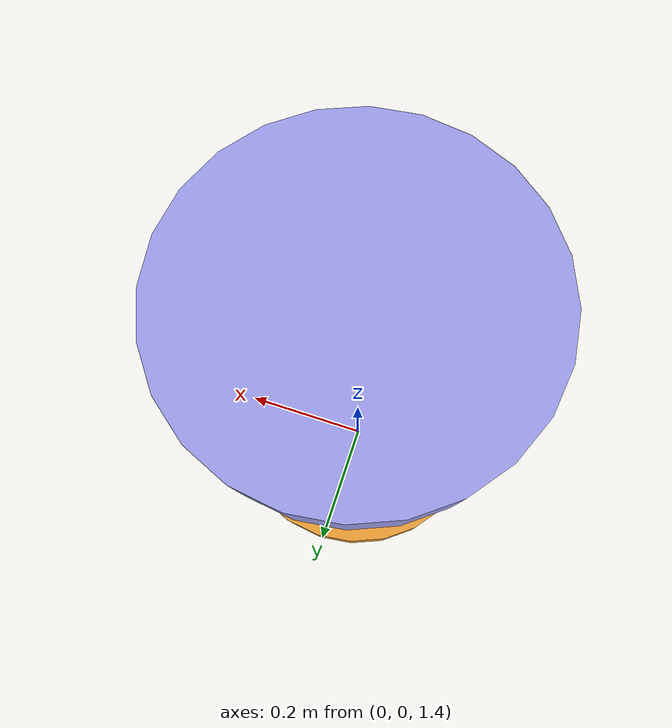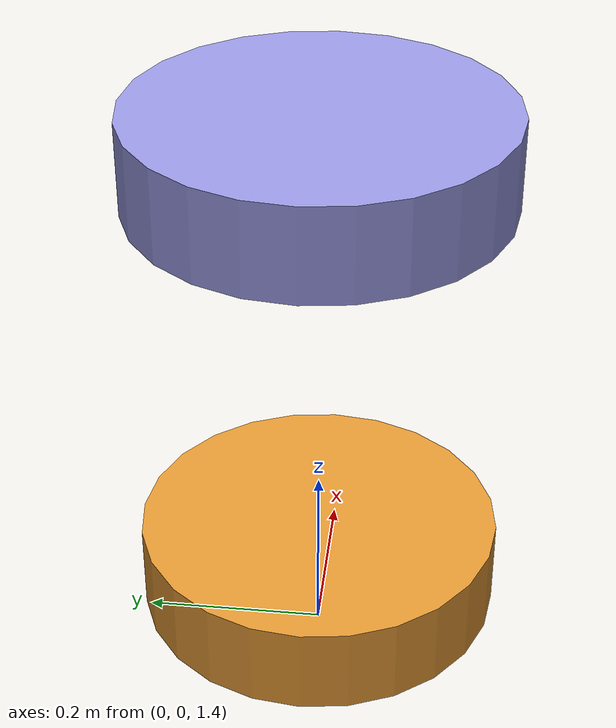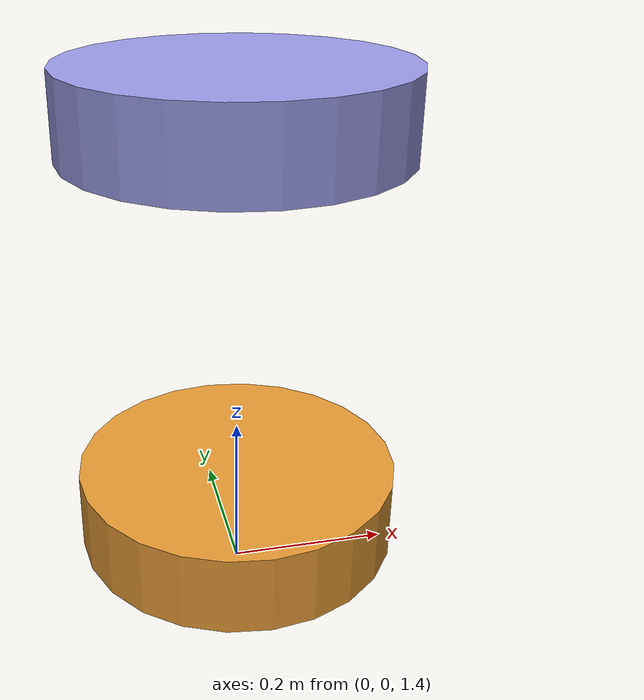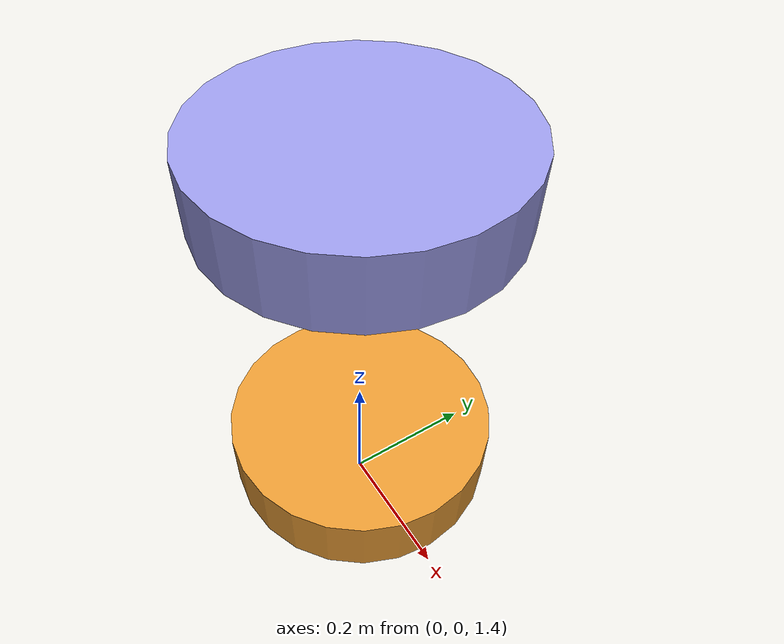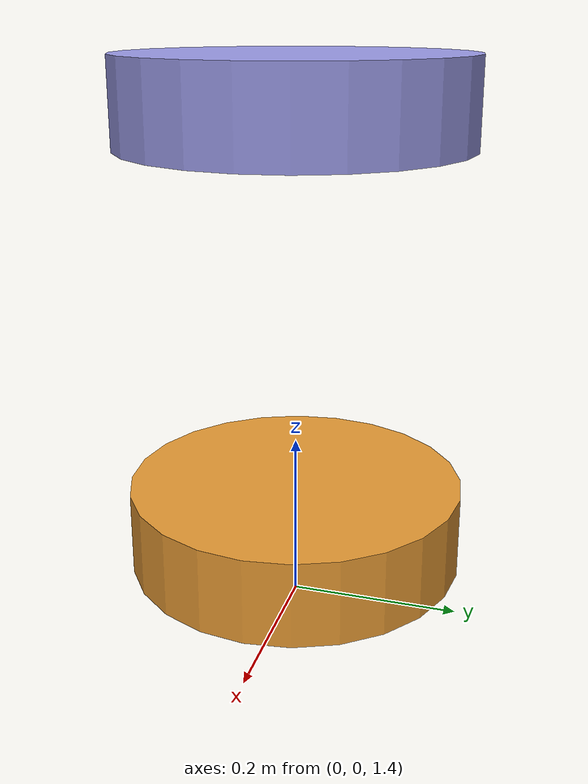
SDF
<?xml version="1.0" encoding="UTF-8"?>
<sdf version="1.9">
  <world name="default">
    <plugin
      filename="gz-sim-physics-system"
      name="gz::sim::systems::Physics">
      <engine><filename>gz-physics-bullet_featherstone-plugin</filename></engine>
    </plugin>
    <plugin
      filename="gz-sim-scene-broadcaster-system"
      name="gz::sim::systems::SceneBroadcaster">
    </plugin>
    <model name="ground_plane">
        <static>true</static>
        <link name="surface">
            <collision name="surface">
                <geometry>
                    <plane>
                        <normal>0 0 1</normal>
                        <size>2 2</size>
                    </plane>
                </geometry>
            </collision>
        </link>
    </model>

    <model name="cylinder1">
      <joint name="world_joint" type="fixed">
        <parent>world</parent>
        <child>base_link</child>
      </joint>
      <pose>0 0.0 2.0 0 0 0</pose>
      <link name="base_link">
        <inertial>
          <mass>1.0</mass>
          <inertia>
            <ixx>0.0068</ixx>
            <ixy>0</ixy>
            <ixz>0</ixz>
            <iyy>0.0068</iyy>
            <iyz>0</iyz>
            <izz>0.0032</izz>
          </inertia>
        </inertial>
      </link>
      <joint name="base_joint" type="prismatic">
        <parent>base_link</parent>
        <child>link1</child>
        <axis>
            <xyz>0 0 1</xyz>
        </axis>
      </joint>
      <link name="link1">
        <inertial>
          <mass>1.0</mass>
          <inertia>
            <ixx>0.0068</ixx>
            <ixy>0</ixy>
            <ixz>0</ixz>
            <iyy>0.0068</iyy>
            <iyz>0</iyz>
            <izz>0.0032</izz>
          </inertia>
        </inertial>
        <collision name="collision1">
            <geometry>
              <cylinder>
                <radius>0.2</radius>
                <length>0.1</length>
              </cylinder>
            </geometry>
        </collision>
        <visual name="visual1">
          <geometry>
            <cylinder>
              <radius>0.2</radius>
              <length>0.1</length>
            </cylinder>
          </geometry>
          <material>
              <ambient>0.6 0.6 0.9 1</ambient>
              <diffuse>0.6 0.6 0.9 1</diffuse>
              <specular>1.0 1.0 1.0 1</specular>
          </material>
        </visual>
      </link>

      <!-- This is purely for executing in downstream gz-sim.
           gz-physics does not parse plugin tags -->
      <plugin
        filename="gz-sim-detachable-joint-system"
        name="gz::sim::systems::DetachableJoint">
        <parent_link>link1</parent_link>
        <child_model>cylinder2</child_model>
        <child_link>link2</child_link>
      </plugin>
    </model>

    <model name="cylinder2">
      <pose>0 0.0 1.5 0 0 0</pose>
      <link name="link2">
        <inertial>
          <mass>1.0</mass>
          <pose>0.0 0 0.3 0 0 0</pose>
          <inertia>
            <ixx>0.0068</ixx>
            <ixy>0</ixy>
            <ixz>0</ixz>
            <iyy>0.0068</iyy>
            <iyz>0</iyz>
            <izz>0.0032</izz>
          </inertia>
        </inertial>
        <collision name="collision2">
            <geometry>
              <cylinder>
                <radius>0.2</radius>
                <length>0.1</length>
              </cylinder>
            </geometry>
        </collision>
        <visual name="visual2">
          <geometry>
            <cylinder>
              <radius>0.2</radius>
              <length>0.1</length>
            </cylinder>
          </geometry>
          <material>
              <ambient>0.9 0.6 0.2 1</ambient>
              <diffuse>0.9 0.6 0.2 1</diffuse>
              <specular>1.0 1.0 1.0 1</specular>
          </material>
        </visual>
      </link>
    </model>

  </world>
</sdf>
